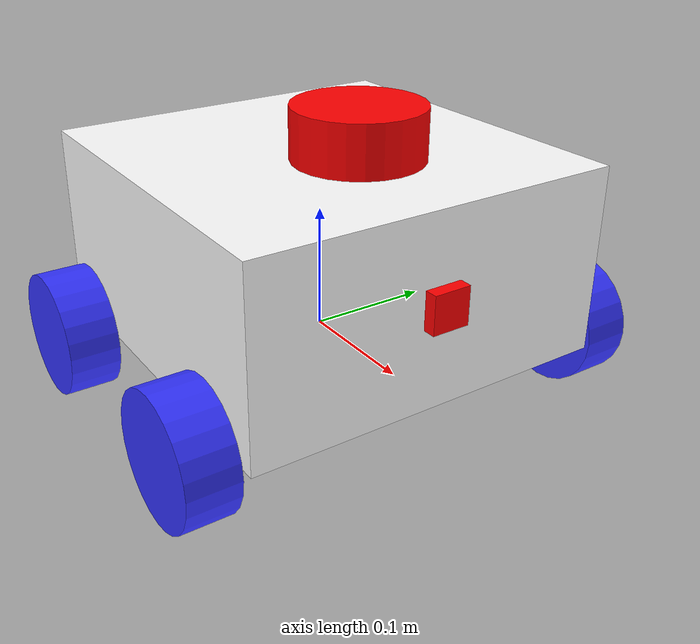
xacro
<?xml version="1.0"?>
<robot xmlns:xacro="http://www.ros.org/wiki/xacro"  name="robot">

    <xacro:arg name="use_ros2_control" default="true"/>

    <xacro:include filename="robot_core.xacro"/>

    <xacro:if value="$(arg use_ros2_control)">
        <xacro:include filename="ros2_control.xacro"/>
    </xacro:if>
    <xacro:unless value="$(arg use_ros2_control)">
        <xacro:include filename="gazebo_control.xacro"/>
    </xacro:unless>

    <xacro:include filename="lidar.xacro"/>
    <xacro:include filename="camera.xacro"/>

</robot>

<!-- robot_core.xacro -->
<robot xmlns:xacro="http://www.ros.org/wiki/xacro"  name="robot">

    <xacro:include filename='inertial_macros.xacro'/>

    <xacro:property name="chassis_length" value="0.300"/>
    <xacro:property name="chassis_width" value="0.300"/>
    <xacro:property name="chassis_height" value="0.150"/>
    <xacro:property name="chassis_mass" value="0.5"/>
    <xacro:property name="wheel_radius" value="0.05"/>
    <xacro:property name="wheel_thickness" value="0.04"/>
    <xacro:property name="wheel_mass" value="0.1"/>
    <xacro:property name="wheel_offset_x" value="0.2"/>

    <material name="white">
        <color rgba="1 1 1 1 "/>
    </material>

    <material name="orange">
        <color rgba="1 0.3 0.1 1 "/>
    </material>

    <material name="blue">
        <color rgba="0.2 0.2 1 1 "/>
    </material>

    <material name="black">
        <color rgba="0 0 0 1 "/>
    </material>

    <material name="red">
        <color rgba="1 0 0 1 "/>
    </material>

    <!-- BASE LINK -->

    <link name="base_link">

    </link>

    <!-- CHASSIS LINK -->

    <joint name="chassis_joint" type="fixed">
        <parent link="base_link"/>
        <child link="chassis"/>
        <origin xyz="-0.15 0 0"/>
    </joint>

    <link name="chassis">
        <visual>
            <origin xyz="0.15 0 0.075"/>
            <geometry>
                <box size="0.3 0.3 0.15"/>
            </geometry>
            <material name="white"/>
        </visual>
        <collision>
            <origin xyz="0.15 0 0.075"/>
            <geometry>
                <box size="0.3 0.3 0.15"/>
            </geometry>
        </collision>
        <xacro:inertial_box mass="0.5" x="0.3" y="0.3" z="0.15">
            <origin xyz="0.16 0 0.075" rpy="0 0 0"/>
        </xacro:inertial_box>
    </link>

    <gazebo reference='chassis'>
        <material>Gazebo/White</material>
    </gazebo>

    <!-- FRONT LEFT WHEEL LINK -->
    <joint name="fl_wheel_joint" type="continuous">
        <parent link="base_link"/>
        <child link="fl_wheel"/>
        <origin xyz="0.1 0.175 0" rpy="-${pi/2} 0 0"/>
        <axis xyz="0 0 1"/>
    </joint>

    <link name="fl_wheel">
        <visual>
            <geometry>
                <cylinder radius="0.05" length="0.04"/>
            </geometry>
            <material name="blue"/>
        </visual>
        <collision>
            <geometry>
                <cylinder radius="0.05" length="0.04"/>
            </geometry>
        </collision>
        <xacro:inertial_cylinder mass="0.1" length="0.04" radius="0.05">
            <origin xyz="0 0 0" rpy="0 0 0"/>
        </xacro:inertial_cylinder>
    </link>

    <gazebo reference='fl_wheel'>
        <material>Gazebo/Blue</material>
    </gazebo>

    <!-- FRONT RIGHT WHEEL LINK -->
    <joint name="fr_wheel_joint" type="continuous">
        <parent link="base_link"/>
        <child link="fr_wheel"/>
        <origin xyz="0.1 -0.175 0" rpy="${pi/2} 0 0"/>
        <axis xyz="0 0 -1"/>
    </joint>

    <link name="fr_wheel">
        <visual>
            <geometry>
                <cylinder radius="0.05" length="0.04"/>
            </geometry>
            <material name="blue"/>
        </visual>
        <collision>
            <geometry>
                <cylinder radius="0.05" length="0.04"/>
            </geometry>
        </collision>
        <xacro:inertial_cylinder mass="0.1" length="0.04" radius="0.05">
            <origin xyz="0 0 0" rpy="0 0 0"/>
        </xacro:inertial_cylinder>
    </link>

    <gazebo reference='fr_wheel'>
        <material>Gazebo/Blue</material>
    </gazebo>

    <!-- REAR LEFT WHEEL LINK -->
    <joint name="rl_wheel_joint" type="continuous">
        <parent link="base_link"/>
        <child link="rl_wheel"/>
        <origin xyz="-0.1 0.175 0" rpy="-${pi/2} 0 0"/>
        <axis xyz="0 0 1"/>
    </joint>

    <link name="rl_wheel">
        <visual>
            <geometry>
                <cylinder radius="0.05" length="0.04"/>
            </geometry>
            <material name="blue"/>
        </visual>
        <collision>
            <geometry>
                <cylinder radius="0.05" length="0.04"/>
            </geometry>
        </collision>
        <xacro:inertial_cylinder mass="0.1" length="0.04" radius="0.05">
            <origin xyz="0 0 0" rpy="0 0 0"/>
        </xacro:inertial_cylinder>
    </link>

    <gazebo reference='rl_wheel'>
        <material>Gazebo/Blue</material>
    </gazebo>

    <!-- REAR RIGHT WHEEL LINK -->
    <joint name="rr_wheel_joint" type="continuous">
        <parent link="base_link"/>
        <child link="rr_wheel"/>
        <origin xyz="-0.1 -0.175 0" rpy="${pi/2} 0 0"/>
        <axis xyz="0 0 -1"/>
    </joint>

    <link name="rr_wheel">
        <visual>
            <geometry>
                <cylinder radius="0.05" length="0.04"/>
            </geometry>
            <material name="blue"/>
        </visual>
        <collision>
            <geometry>
                <cylinder radius="0.05" length="0.04"/>
            </geometry>
        </collision>
        <xacro:inertial_cylinder mass="0.1" length="0.04" radius="0.05">
            <origin xyz="0 0 0" rpy="0 0 0"/>
        </xacro:inertial_cylinder>
    </link>

    <gazebo reference='rr_wheel'>
        <material>Gazebo/Blue</material>
    </gazebo>

</robot>

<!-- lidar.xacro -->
<robot xmlns:xacro="http://www.ros.org/wiki/xacro">

    <joint name="laser_joint" type="fixed">
        <parent link="chassis"/>
        <child link="laser_frame"/>
        <origin xyz="0.2 0 0.175" rpy="0 0 0"/>
    </joint>

    <link name="laser_frame">
        <visual>
            <geometry>
                <cylinder radius="0.05" length="0.04"/>
            </geometry>
            <material name="red"/>
        </visual>
        <collision>
            <geometry>
                <cylinder radius="0.05" length="0.04"/>
            </geometry>
        </collision>
        <xacro:inertial_cylinder mass="0.1" length="0.04" radius="0.05">
            <origin xyz="0 0 0" rpy="0 0 0"/>
        </xacro:inertial_cylinder>
    </link>

    <gazebo reference="laser_frame">
        <material>Gazebo/Red</material>
        <sensor name="laser" type="ray">
            <pose>0 0 0 0 0 0</pose>
            <visualize>false</visualize>
            <update_rate>10</update_rate>
            <ray>
                <scan>
                    <horizontal>
                        <samples>360</samples>
                        <resolution>1</resolution>
                        <min_angle>-3.14</min_angle>
                        <max_angle>3.14</max_angle>
                    </horizontal>
                </scan>
                <range>
                    <min>0.3</min>
                    <max>12</max>
                    <resolution>0.01</resolution>
                </range>
            </ray>
            <plugin name="laser_controller" filename="libgazebo_ros_ray_sensor.so">
                <ros>
                    <remapping>~/out:=/scan</remapping>
                </ros>
                <output_type>sensor_msgs/LaserScan</output_type>
                <frame_name>laser_frame</frame_name>
            </plugin>
        </sensor>
    </gazebo>

</robot>

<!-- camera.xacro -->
<robot xmlns:xacro="http://www.ros.org/wiki/xacro">

    <joint name="camera_joint" type="fixed">
        <parent link="chassis"/>
        <child link="camera_link"/>
        <origin xyz="0.305 0 0.08" rpy="0 0 0"/>
    </joint>

    <link name="camera_link">
        <visual>
            <geometry>
                <box size="0.010 0.03 0.03"/>
            </geometry>
            <material name="red"/>
        </visual>
    </link>

    <joint name="camera_optical_joint" type="fixed">
        <parent link="chassis"/>
        <child link="camera_link_optical"/>
        <origin xyz="0 0 0" rpy="${-pi/2} 0 ${-pi/2}"/>
    </joint>

    <link name="camera_link_optical"></link>

    <gazebo reference="camera_link">
        <material>Gazebo/Red</material>
        <sensor name="camera" type="camera">
            <pose>0 0 0 0 0 0</pose>
            <visualise>true</visualise>
            <update_rate>10</update_rate>
            <camera>
                <horizontal_fov>1.089</horizontal_fov>
                <image>
                    <format>R8G8B8</format>
                    <width>640</width>
                    <height>480</height>
                </image>
                <clip>
                    <near>0.05</near>
                    <far>8.0</far>
                </clip>
            </camera>
            <plugin name="camera_controller" filename="libgazebo_ros_camera.so">
                <frame_name>camera_link_optical</frame_name>
            </plugin>
        </sensor>
    </gazebo>

</robot>
